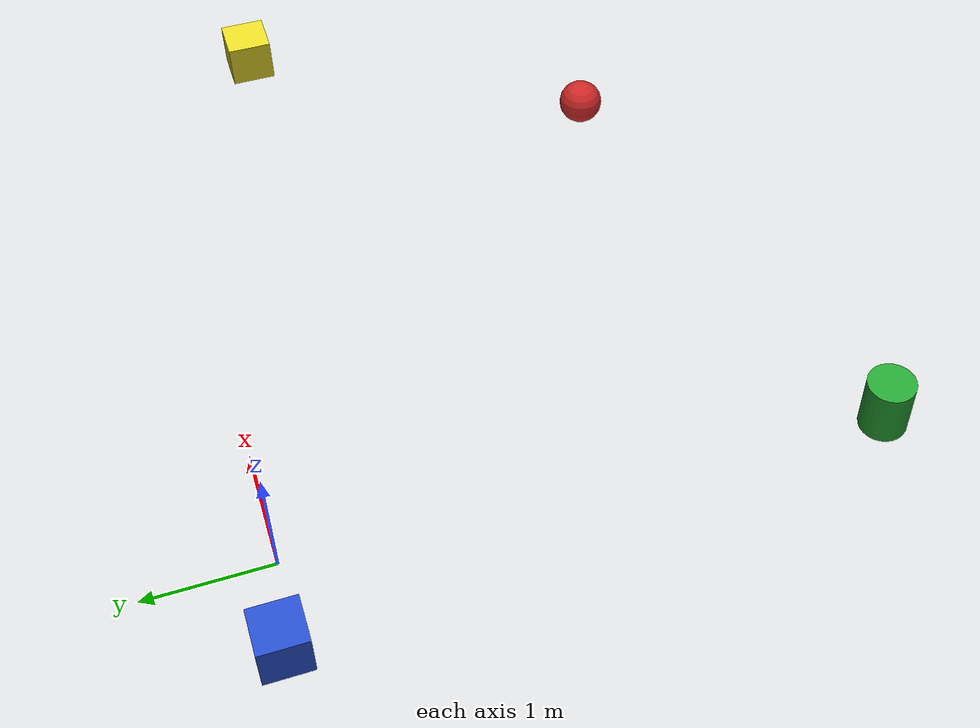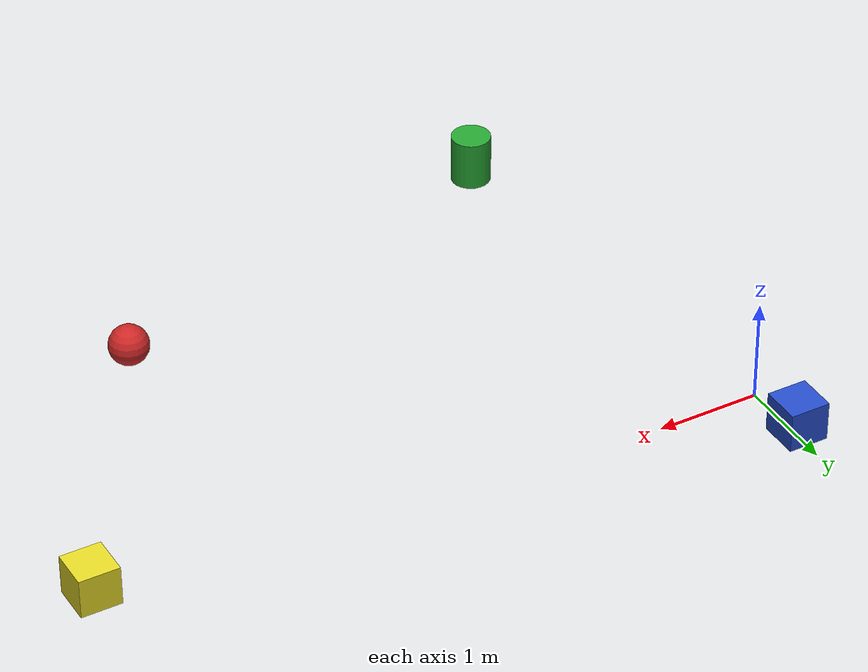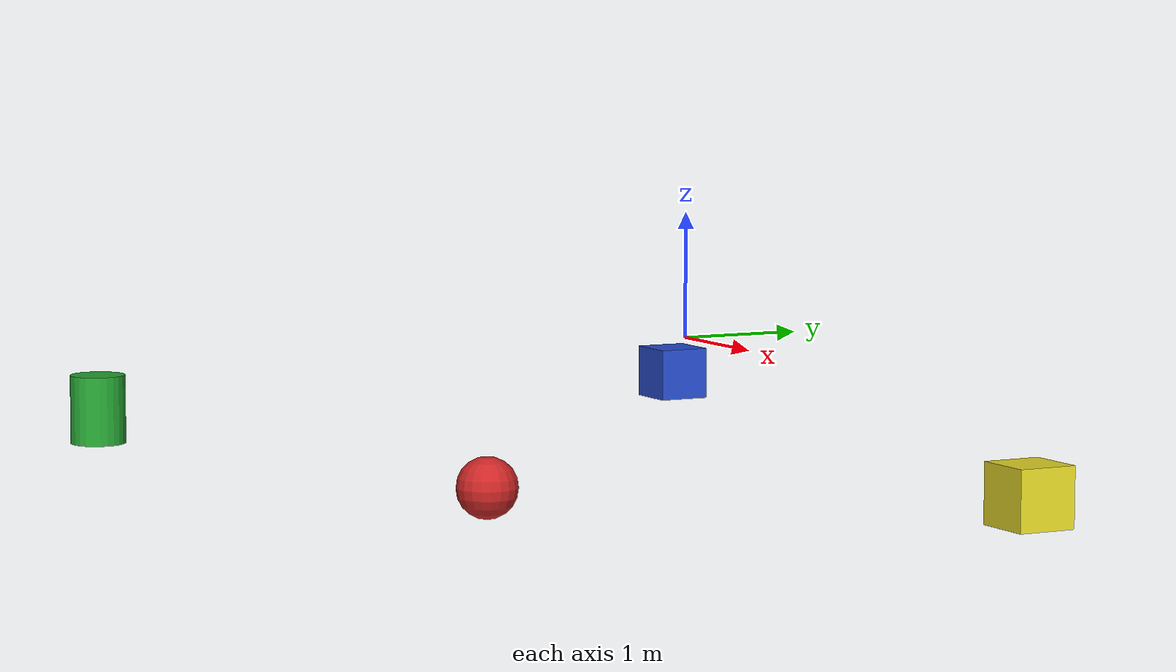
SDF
<?xml version='1.0'?>
<sdf version='1.7'>
  <model name='rc_model'>
    <link name='link_0'>
      <inertial>
        <mass>1</mass>
        <inertia>
          <ixx>0.145833</ixx>
          <ixy>0</ixy>
          <ixz>0</ixz>
          <iyy>0.145833</iyy>
          <iyz>0</iyz>
          <izz>0.125</izz>
        </inertia>
        <pose>0 0 0 0 -0 0</pose>
      </inertial>
      <pose>0.112798 -4.94657 -0.261592 0 -0 0</pose>
      <gravity>1</gravity>
      <self_collide>0</self_collide>
      <kinematic>0</kinematic>
      <enable_wind>0</enable_wind>
      <visual name='visual'>
        <pose>0 0 0 0 -0 0</pose>
        <geometry>
          <cylinder>
            <radius>0.2</radius>
            <length>0.5</length>
          </cylinder>
        </geometry>
        <material>
          <lighting>1</lighting>
          <script>
            <uri>file://media/materials/scripts/gazebo.material</uri>
            <name>Gazebo/Green</name>
          </script>
          <shader type='pixel'>
            <normal_map>__default__</normal_map>
          </shader>
          <ambient>0 1 0 1</ambient>
          <diffuse>0 1 0 1</diffuse>
          <specular>0.1 0.1 0.1 1</specular>
          <emissive>0 0 0 1</emissive>
        </material>
        <transparency>0</transparency>
        <cast_shadows>1</cast_shadows>
      </visual>
      <collision name='collision'>
        <laser_retro>0</laser_retro>
        <max_contacts>10</max_contacts>
        <pose>0 0 0 0 -0 0</pose>
        <geometry>
          <cylinder>
            <radius>0.5</radius>
            <length>1</length>
          </cylinder>
        </geometry>
        <surface>
          <friction>
            <ode>
              <mu>1</mu>
              <mu2>1</mu2>
              <fdir1>0 0 0</fdir1>
              <slip1>0</slip1>
              <slip2>0</slip2>
            </ode>
            <torsional>
              <coefficient>1</coefficient>
              <patch_radius>0</patch_radius>
              <surface_radius>0</surface_radius>
              <use_patch_radius>1</use_patch_radius>
              <ode>
                <slip>0</slip>
              </ode>
            </torsional>
          </friction>
          <bounce>
            <restitution_coefficient>0</restitution_coefficient>
            <threshold>1e+06</threshold>
          </bounce>
          <contact>
            <collide_without_contact>0</collide_without_contact>
            <collide_without_contact_bitmask>1</collide_without_contact_bitmask>
            <collide_bitmask>1</collide_bitmask>
            <ode>
              <soft_cfm>0</soft_cfm>
              <soft_erp>0.2</soft_erp>
              <kp>1e+13</kp>
              <kd>1</kd>
              <max_vel>0.01</max_vel>
              <min_depth>0</min_depth>
            </ode>
            <bullet>
              <split_impulse>1</split_impulse>
              <split_impulse_penetration_threshold>-0.01</split_impulse_penetration_threshold>
              <soft_cfm>0</soft_cfm>
              <soft_erp>0.2</soft_erp>
              <kp>1e+13</kp>
              <kd>1</kd>
            </bullet>
          </contact>
        </surface>
      </collision>
    </link>
    <link name='link_1'>
      <inertial>
        <mass>1</mass>
        <inertia>
          <ixx>0.166667</ixx>
          <ixy>0</ixy>
          <ixz>0</ixz>
          <iyy>0.166667</iyy>
          <iyz>0</iyz>
          <izz>0.166667</izz>
        </inertia>
        <pose>0 0 0 0 -0 0</pose>
      </inertial>
      <pose>-0.412676 0.110833 -0.319794 0 -0 0</pose>
      <gravity>1</gravity>
      <self_collide>0</self_collide>
      <kinematic>0</kinematic>
      <enable_wind>0</enable_wind>
      <visual name='visual'>
        <pose>0 0 0 0 -0 0</pose>
        <geometry>
          <box>
            <size>0.4 0.4 0.4</size>
          </box>
        </geometry>
        <material>
          <lighting>1</lighting>
          <script>
            <uri>file://media/materials/scripts/gazebo.material</uri>
            <name>Gazebo/Blue</name>
          </script>
          <shader type='pixel'>
            <normal_map>__default__</normal_map>
          </shader>
          <ambient>0 0 1 1</ambient>
          <diffuse>0 0 1 1</diffuse>
          <specular>0.1 0.1 0.1 1</specular>
          <emissive>0 0 0 1</emissive>
        </material>
        <transparency>0</transparency>
        <cast_shadows>1</cast_shadows>
      </visual>
      <collision name='collision'>
        <laser_retro>0</laser_retro>
        <max_contacts>10</max_contacts>
        <pose>0 0 0 0 -0 0</pose>
        <geometry>
          <box>
            <size>1 1 1</size>
          </box>
        </geometry>
        <surface>
          <friction>
            <ode>
              <mu>1</mu>
              <mu2>1</mu2>
              <fdir1>0 0 0</fdir1>
              <slip1>0</slip1>
              <slip2>0</slip2>
            </ode>
            <torsional>
              <coefficient>1</coefficient>
              <patch_radius>0</patch_radius>
              <surface_radius>0</surface_radius>
              <use_patch_radius>1</use_patch_radius>
              <ode>
                <slip>0</slip>
              </ode>
            </torsional>
          </friction>
          <bounce>
            <restitution_coefficient>0</restitution_coefficient>
            <threshold>1e+06</threshold>
          </bounce>
          <contact>
            <collide_without_contact>0</collide_without_contact>
            <collide_without_contact_bitmask>1</collide_without_contact_bitmask>
            <collide_bitmask>1</collide_bitmask>
            <ode>
              <soft_cfm>0</soft_cfm>
              <soft_erp>0.2</soft_erp>
              <kp>1e+13</kp>
              <kd>1</kd>
              <max_vel>0.01</max_vel>
              <min_depth>0</min_depth>
            </ode>
            <bullet>
              <split_impulse>1</split_impulse>
              <split_impulse_penetration_threshold>-0.01</split_impulse_penetration_threshold>
              <soft_cfm>0</soft_cfm>
              <soft_erp>0.2</soft_erp>
              <kp>1e+13</kp>
              <kd>1</kd>
            </bullet>
          </contact>
        </surface>
      </collision>
    </link>
    <link name='link_4'>
      <inertial>
        <mass>1</mass>
        <inertia>
          <ixx>0.1</ixx>
          <ixy>0</ixy>
          <ixz>0</ixz>
          <iyy>0.1</iyy>
          <iyz>0</iyz>
          <izz>0.1</izz>
        </inertia>
        <pose>0 0 0 0 -0 0</pose>
      </inertial>
      <pose>4.4129 -3.88078 -0.313499 0 -0 0</pose>
      <gravity>1</gravity>
      <self_collide>0</self_collide>
      <kinematic>0</kinematic>
      <enable_wind>0</enable_wind>
      <visual name='visual'>
        <pose>0 0 0 0 -0 0</pose>
        <geometry>
          <sphere>
            <radius>0.2</radius>
          </sphere>
        </geometry>
        <material>
          <lighting>1</lighting>
          <script>
            <uri>file://media/materials/scripts/gazebo.material</uri>
            <name>Gazebo/Red</name>
          </script>
          <shader type='pixel'>
            <normal_map>__default__</normal_map>
          </shader>
          <ambient>1 0 0 1</ambient>
          <diffuse>1 0 0 1</diffuse>
          <specular>0.1 0.1 0.1 1</specular>
          <emissive>0 0 0 1</emissive>
        </material>
        <transparency>0</transparency>
        <cast_shadows>1</cast_shadows>
      </visual>
      <collision name='collision'>
        <laser_retro>0</laser_retro>
        <max_contacts>10</max_contacts>
        <pose>0 0 0 0 -0 0</pose>
        <geometry>
          <sphere>
            <radius>0.5</radius>
          </sphere>
        </geometry>
        <surface>
          <friction>
            <ode>
              <mu>1</mu>
              <mu2>1</mu2>
              <fdir1>0 0 0</fdir1>
              <slip1>0</slip1>
              <slip2>0</slip2>
            </ode>
            <torsional>
              <coefficient>1</coefficient>
              <patch_radius>0</patch_radius>
              <surface_radius>0</surface_radius>
              <use_patch_radius>1</use_patch_radius>
              <ode>
                <slip>0</slip>
              </ode>
            </torsional>
          </friction>
          <bounce>
            <restitution_coefficient>0</restitution_coefficient>
            <threshold>1e+06</threshold>
          </bounce>
          <contact>
            <collide_without_contact>0</collide_without_contact>
            <collide_without_contact_bitmask>1</collide_without_contact_bitmask>
            <collide_bitmask>1</collide_bitmask>
            <ode>
              <soft_cfm>0</soft_cfm>
              <soft_erp>0.2</soft_erp>
              <kp>1e+13</kp>
              <kd>1</kd>
              <max_vel>0.01</max_vel>
              <min_depth>0</min_depth>
            </ode>
            <bullet>
              <split_impulse>1</split_impulse>
              <split_impulse_penetration_threshold>-0.01</split_impulse_penetration_threshold>
              <soft_cfm>0</soft_cfm>
              <soft_erp>0.2</soft_erp>
              <kp>1e+13</kp>
              <kd>1</kd>
            </bullet>
          </contact>
        </surface>
      </collision>
    </link>
    <link name='link_5'>
      <inertial>
        <mass>1</mass>
        <inertia>
          <ixx>0.166667</ixx>
          <ixy>0</ixy>
          <ixz>0</ixz>
          <iyy>0.166667</iyy>
          <iyz>0</iyz>
          <izz>0.166667</izz>
        </inertia>
        <pose>0 0 0 0 -0 0</pose>
      </inertial>
      <pose>6.16855 -0.995165 -0.314853 0 -0 0</pose>
      <gravity>1</gravity>
      <self_collide>0</self_collide>
      <kinematic>0</kinematic>
      <enable_wind>0</enable_wind>
      <visual name='visual'>
        <pose>0 0 0 0 -0 0</pose>
        <geometry>
          <box>
            <size>0.4 0.4 0.4</size>
          </box>
        </geometry>
        <material>
          <lighting>1</lighting>
          <script>
            <uri>file://media/materials/scripts/gazebo.material</uri>
            <name>Gazebo/Yellow</name>
          </script>
          <shader type='pixel'>
            <normal_map>__default__</normal_map>
          </shader>
          <ambient>1 1 0 1</ambient>
          <diffuse>1 1 0 1</diffuse>
          <emissive>0 0 0 1</emissive>
        </material>
        <transparency>0</transparency>
        <cast_shadows>1</cast_shadows>
      </visual>
      <collision name='collision'>
        <laser_retro>0</laser_retro>
        <max_contacts>10</max_contacts>
        <pose>0 0 0 0 -0 0</pose>
        <geometry>
          <box>
            <size>1 1 1</size>
          </box>
        </geometry>
        <surface>
          <friction>
            <ode>
              <mu>1</mu>
              <mu2>1</mu2>
              <fdir1>0 0 0</fdir1>
              <slip1>0</slip1>
              <slip2>0</slip2>
            </ode>
            <torsional>
              <coefficient>1</coefficient>
              <patch_radius>0</patch_radius>
              <surface_radius>0</surface_radius>
              <use_patch_radius>1</use_patch_radius>
              <ode>
                <slip>0</slip>
              </ode>
            </torsional>
          </friction>
          <bounce>
            <restitution_coefficient>0</restitution_coefficient>
            <threshold>1e+06</threshold>
          </bounce>
          <contact>
            <collide_without_contact>0</collide_without_contact>
            <collide_without_contact_bitmask>1</collide_without_contact_bitmask>
            <collide_bitmask>1</collide_bitmask>
            <ode>
              <soft_cfm>0</soft_cfm>
              <soft_erp>0.2</soft_erp>
              <kp>1e+13</kp>
              <kd>1</kd>
              <max_vel>0.01</max_vel>
              <min_depth>0</min_depth>
            </ode>
            <bullet>
              <split_impulse>1</split_impulse>
              <split_impulse_penetration_threshold>-0.01</split_impulse_penetration_threshold>
              <soft_cfm>0</soft_cfm>
              <soft_erp>0.2</soft_erp>
              <kp>1e+13</kp>
              <kd>1</kd>
            </bullet>
          </contact>
        </surface>
      </collision>
    </link>
    <static>0</static>
    <allow_auto_disable>1</allow_auto_disable>
  </model>
</sdf>
